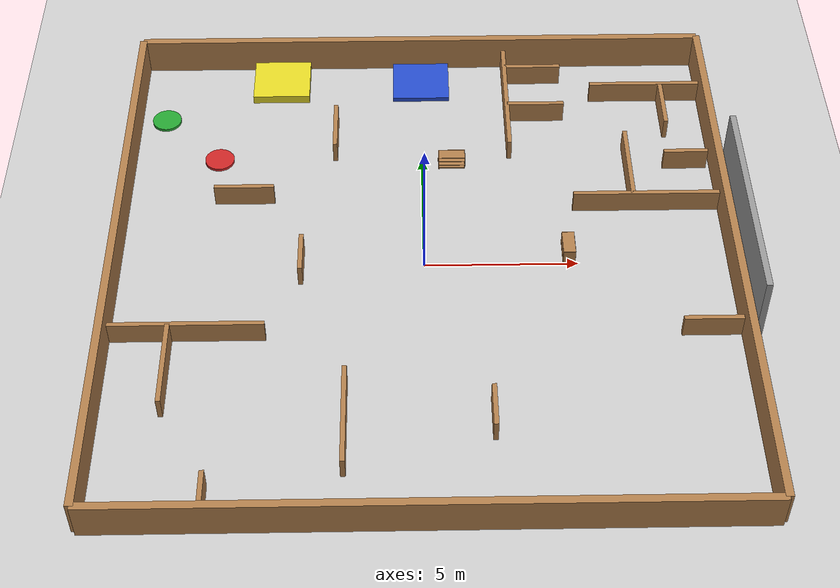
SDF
<sdf version="1.7">
 <world name="default">
  <model name="ground_plane">
   <static>1</static>
   <link name="link">
    <collision name="collision">
     <geometry><plane><normal>0 0 1</normal><size>100 100</size></plane></geometry>
     <surface>
      <contact><collide_bitmask>65535</collide_bitmask></contact>
      <friction><ode><mu>100</mu><mu2>50</mu2></ode></friction>
     </surface>
    </collision>
    <visual name="visual">
     <cast_shadows>0</cast_shadows>
     <geometry><plane><normal>0 0 1</normal><size>100 100</size></plane></geometry>
     <material>
      <script><uri>file://media/materials/scripts/gazebo.material</uri><name>Gazebo/Grey</name></script>
     </material>
    </visual>
   </link>
  </model>
  <model name="room_square">
   <link name="Wall_1">
    <collision name="Wall_1_Collision">
     <geometry><box><size>20 0.25 2</size></box></geometry>
     <pose>0 0 0.25 0 -0 0</pose>
    </collision>
    <visual name="Wall_1_Visual">
     <pose>0 0 0.25 0 -0 0</pose>
     <geometry><box><size>20 0.25 2</size></box></geometry>
     <material>
      <script><uri>file://media/materials/scripts/gazebo.material</uri><name>Gazebo/Wood</name></script>
      <ambient>1 1 1 1</ambient>
     </material>
    </visual>
    <pose>-10 0 0 0 -0 1.5708</pose>
   </link>
   <link name="Wall_2">
    <collision name="Wall_2_Collision">
     <geometry><box><size>20 0.25 2</size></box></geometry>
     <pose>0 0 0.25 0 -0 0</pose>
    </collision>
    <visual name="Wall_2_Visual">
     <pose>0 0 0.25 0 -0 0</pose>
     <geometry><box><size>20 0.25 2</size></box></geometry>
     <material>
      <script><uri>file://media/materials/scripts/gazebo.material</uri><name>Gazebo/Wood</name></script>
      <ambient>1 1 1 1</ambient>
     </material>
    </visual>
    <pose>0 10 0 0 -0 0</pose>
   </link>
   <link name="Wall_3">
    <collision name="Wall_3_Collision">
     <geometry><box><size>20 0.25 2</size></box></geometry>
     <pose>0 0 0.25 0 -0 0</pose>
    </collision>
    <visual name="Wall_3_Visual">
     <pose>0 0 0.25 0 -0 0</pose>
     <geometry><box><size>20 0.25 2</size></box></geometry>
     <material>
      <script><uri>file://media/materials/scripts/gazebo.material</uri><name>Gazebo/Wood</name></script>
      <ambient>1 1 1 1</ambient>
     </material>
    </visual>
    <pose>10 0 0 0 0 -1.5708</pose>
   </link>
   <link name="Wall_4">
    <collision name="Wall_4_Collision">
     <geometry><box><size>20 0.25 2</size></box></geometry>
     <pose>0 0 0.25 0 -0 0</pose>
    </collision>
    <visual name="Wall_4_Visual">
     <pose>0 0 0.25 0 -0 0</pose>
     <geometry><box><size>20 0.25 2</size></box></geometry>
     <material>
      <script><uri>file://media/materials/scripts/gazebo.material</uri><name>Gazebo/Wood</name></script>
      <ambient>1 1 1 1</ambient>
     </material>
    </visual>
    <pose>0 -10 0 0 -0 3.14159</pose>
   </link>
   <static>1</static>
  </model>
  <model name="inner_walls">
   <link name="inner_wall_1_1">
    <collision name="inner_wall_1_1_collision">
     <geometry><box><size>5 0.15 1</size></box></geometry>
     <pose>0 0 0.25 0 -0 0</pose>
    </collision>
    <visual name="inner_wall_1_1_visual">
     <pose>0 0 0.25 0 -0 0</pose>
     <geometry><box><size>5 0.15 1</size></box></geometry>
     <material>
      <script><uri>file://media/materials/scripts/gazebo.material</uri><name>Gazebo/Wood</name></script>
      <ambient>1 1 1 1</ambient>
     </material>
    </visual>
    <pose>-7.5 -3 0 0 -0 0</pose>
   </link>
   <link name="inner_wall_right_down_h">
    <collision name="inner_wall_right_down_h_collision">
     <geometry><box><size>3 0.15 1</size></box></geometry>
     <pose>0 0 0.25 0 -0 0</pose>
    </collision>
    <visual name="inner_wall_right_down_h_visual">
     <pose>0 0 0.25 0 -0 0</pose>
     <geometry><box><size>3 0.15 1</size></box></geometry>
     <material>
      <script><uri>file://media/materials/scripts/gazebo.material</uri><name>Gazebo/Wood</name></script>
      <ambient>1 1 1 1</ambient>
     </material>
    </visual>
    <pose>-8 -4.5 0 0 0 -1.5708</pose>
   </link>
   <link name="inner_wall_1_2">
    <collision name="inner_wall_1_2_collision">
     <geometry><box><size>3 0.15 1</size></box></geometry>
     <pose>0 0 0.25 0 -0 0</pose>
    </collision>
    <visual name="inner_wall_1_2_visual">
     <pose>0 0 0.25 0 -0 0</pose>
     <geometry><box><size>3.5 0.15 1</size></box></geometry>
     <material>
      <script><uri>file://media/materials/scripts/gazebo.material</uri><name>Gazebo/Wood</name></script>
      <ambient>1 1 1 1</ambient>
     </material>
    </visual>
    <pose>-2.5 -6.5 0 0 0 -1.5708</pose>
   </link>
   <link name="inner_wall_3">
    <collision name="inner_wall_3_collision">
     <geometry><box><size>1.5 0.15 1</size></box></geometry>
     <pose>0 0 0.25 0 -0 0</pose>
    </collision>
    <visual name="inner_wall_3_visual">
     <pose>0 0 0.25 0 -0 0</pose>
     <geometry><box><size>1.5 0.15 1</size></box></geometry>
     <material>
      <script><uri>file://media/materials/scripts/gazebo.material</uri><name>Gazebo/Wood</name></script>
      <ambient>1 1 1 1</ambient>
     </material>
    </visual>
    <pose>2 -6.25 0 0 0 -1.5708</pose>
   </link>
   <link name="inner_wall_9">
    <collision name="inner_wall_9_collision">
     <geometry><box><size>2 0.15 1</size></box></geometry>
     <pose>0 0 0.25 0 -0 0</pose>
    </collision>
    <visual name="inner_wall_9_visual">
     <pose>0 0 0.25 0 -0 0</pose>
     <geometry><box><size>2 0.15 1</size></box></geometry>
     <material>
      <script><uri>file://media/materials/scripts/gazebo.material</uri><name>Gazebo/Wood</name></script>
      <ambient>1 1 1 1</ambient>
     </material>
    </visual>
    <pose>9 -3 0 0 -0 0</pose>
   </link>
   <link name="inner_wall_4">
    <collision name="inner_wall_4_collision">
     <geometry><box><size>5 0.15 1</size></box></geometry>
     <pose>0 0 0.25 0 -0 0</pose>
    </collision>
    <visual name="inner_wall_4_visual">
     <pose>0 0 0.25 0 -0 0</pose>
     <geometry><box><size>5 0.15 1</size></box></geometry>
     <material>
      <script><uri>file://media/materials/scripts/gazebo.material</uri><name>Gazebo/Wood</name></script>
      <ambient>1 1 1 1</ambient>
     </material>
    </visual>
    <pose>3 7.5 0 0 0 -1.5708</pose>
   </link>
   <link name="inner_wall_5">
    <collision name="inner_wall_5_collision">
     <geometry><box><size>5 0.15 1</size></box></geometry>
     <pose>0 0 0.25 0 -0 0</pose>
    </collision>
    <visual name="inner_wall_5_visual">
     <pose>0 0 0.25 0 -0 0</pose>
     <geometry><box><size>5 0.15 1</size></box></geometry>
     <material>
      <script><uri>file://media/materials/scripts/gazebo.material</uri><name>Gazebo/Wood</name></script>
      <ambient>1 1 1 1</ambient>
     </material>
    </visual>
    <pose>7.5 2.5 0 0 -0 0</pose>
   </link>
   <link name="inner_wall_10">
    <collision name="inner_wall_10_collision">
     <geometry><box><size>1.5 0.15 1</size></box></geometry>
     <pose>0 0 0.25 0 -0 0</pose>
    </collision>
    <visual name="inner_wall_10_visual">
     <pose>0 0 0.25 0 -0 0</pose>
     <geometry><box><size>1.5 0.15 1</size></box></geometry>
     <material>
      <script><uri>file://media/materials/scripts/gazebo.material</uri><name>Gazebo/Wood</name></script>
      <ambient>1 1 1 1</ambient>
     </material>
    </visual>
    <pose>-6.5 -9.25 0 0 0 -1.5708</pose>
   </link>
   <link name="inner_wall_6">
    <collision name="inner_wall_6_collision">
     <geometry><box><size>1 0.15 1</size></box></geometry>
     <pose>0 0 0.25 0 -0 0</pose>
    </collision>
    <visual name="inner_wall_6_visual">
     <pose>0 0 0.25 0 -0 0</pose>
     <geometry><box><size>2 0.15 1</size></box></geometry>
     <material>
      <script><uri>file://media/materials/scripts/gazebo.material</uri><name>Gazebo/Wood</name></script>
      <ambient>1 1 1 1</ambient>
     </material>
    </visual>
    <pose>-6 3 0 0 -0 0</pose>
   </link>
   <link name="inner_wall_7">
    <collision name="inner_wall_7_collision">
     <geometry><box><size>2 0.15 1</size></box></geometry>
     <pose>0 0 0.25 0 -0 0</pose>
    </collision>
    <visual name="inner_wall_7_visual">
     <pose>0 0 0.25 0 -0 0</pose>
     <geometry><box><size>2 0.15 1</size></box></geometry>
     <material>
      <script><uri>file://media/materials/scripts/gazebo.material</uri><name>Gazebo/Wood</name></script>
      <ambient>1 1 1 1</ambient>
     </material>
    </visual>
    <pose>-3 6 0 0 0 -1.5708</pose>
   </link>
   <link name="inner_wall_8">
    <collision name="inner_wall_8_collision">
     <geometry><box><size>1.5 0.15 1</size></box></geometry>
     <pose>0 0 0.25 0 -0 0</pose>
    </collision>
    <visual name="inner_wall_8_visual">
     <pose>0 0 0.25 0 -0 0</pose>
     <geometry><box><size>1.5 0.15 1</size></box></geometry>
     <material>
      <script><uri>file://media/materials/scripts/gazebo.material</uri><name>Gazebo/Wood</name></script>
      <ambient>1 1 1 1</ambient>
     </material>
    </visual>
    <pose>-4 0 0 0 0 -1.5708</pose>
   </link>
   <link name="inner_wall_11">
    <collision name="inner_wall_11_collision">
     <geometry><box><size>3 0.15 1</size></box></geometry>
     <pose>0 0 0.25 0 -0 0</pose>
    </collision>
    <visual name="inner_wall_11_visual">
     <pose>0 0 0.25 0 -0 0</pose>
     <geometry><box><size>3 0.15 1</size></box></geometry>
     <material>
      <script><uri>file://media/materials/scripts/gazebo.material</uri><name>Gazebo/Wood</name></script>
      <ambient>1 1 1 1</ambient>
     </material>
    </visual>
    <pose>7 4 0 0 0 -1.5708</pose>
   </link>
   <link name="inner_wall_12">
    <collision name="inner_wall_12_collision">
     <geometry><box><size>4 0.15 1</size></box></geometry>
     <pose>0 0 0.25 0 -0 0</pose>
    </collision>
    <visual name="inner_wall_12_visual">
     <pose>0 0 0.25 0 -0 0</pose>
     <geometry><box><size>4 0.15 1</size></box></geometry>
     <material>
      <script><uri>file://media/materials/scripts/gazebo.material</uri><name>Gazebo/Wood</name></script>
      <ambient>1 1 1 1</ambient>
     </material>
    </visual>
    <pose>8 8 0 0 -0 0</pose>
   </link>
   <link name="inner_wall_13">
    <collision name="inner_wall_13_collision">
     <geometry><box><size>2 0.15 1</size></box></geometry>
     <pose>0 0 0.25 0 -0 0</pose>
    </collision>
    <visual name="inner_wall_13_visual">
     <pose>0 0 0.25 0 -0 0</pose>
     <geometry><box><size>2 0.15 1</size></box></geometry>
     <material>
      <script><uri>file://media/materials/scripts/gazebo.material</uri><name>Gazebo/Wood</name></script>
      <ambient>1 1 1 1</ambient>
     </material>
    </visual>
    <pose>4 9 0 0 -0 0</pose>
   </link>
   <link name="inner_wall_14">
    <collision name="inner_wall_14_collision">
     <geometry><box><size>1.5 0.15 1</size></box></geometry>
     <pose>0 0 0.25 0 -0 0</pose>
    </collision>
    <visual name="inner_wall_14_visual">
     <pose>0 0 0.25 0 -0 0</pose>
     <geometry><box><size>1.5 0.15 1</size></box></geometry>
     <material>
      <script><uri>file://media/materials/scripts/gazebo.material</uri><name>Gazebo/Wood</name></script>
      <ambient>1 1 1 1</ambient>
     </material>
    </visual>
    <pose>9 4.5 0 0 -0 0</pose>
   </link>
   <link name="inner_wall_15">
    <collision name="inner_wall_15_collision">
     <geometry><box><size>2 0.15 1</size></box></geometry>
     <pose>0 0 0.25 0 -0 0</pose>
    </collision>
    <visual name="inner_wall_15_visual">
     <pose>0 0 0.25 0 -0 0</pose>
     <geometry><box><size>2 0.15 1</size></box></geometry>
     <material>
      <script><uri>file://media/materials/scripts/gazebo.material</uri><name>Gazebo/Wood</name></script>
      <ambient>1 1 1 1</ambient>
     </material>
    </visual>
    <pose>8.5 7 0 0 0 -1.5708</pose>
   </link>
   <link name="inner_wall_16">
    <collision name="inner_wall_16_collision">
     <geometry><box><size>2 0.15 1</size></box></geometry>
     <pose>0 0 0.25 0 -0 0</pose>
    </collision>
    <visual name="inner_wall_16_visual">
     <pose>0 0 0.25 0 -0 0</pose>
     <geometry><box><size>2 0.15 1</size></box></geometry>
     <material>
      <script><uri>file://media/materials/scripts/gazebo.material</uri><name>Gazebo/Wood</name></script>
      <ambient>1 1 1 1</ambient>
     </material>
    </visual>
    <pose>4 7 0 0 -0 0</pose>
   </link>
   <static>1</static>
  </model>
  <model name="random_obstacles">
   <link name="rnd_obstacle_1">
    <collision name="rnd_obstacle_1_collision">
     <pose>0 0 0.05 0 -0 0</pose>
     <geometry><cylinder><radius>0.5</radius><length>0.1</length></cylinder></geometry>
    </collision>
    <visual name="rnd_obstacle_1_visual">
     <pose>0 0 0.05 0 -0 0</pose>
     <geometry><cylinder><radius>0.5</radius><length>0.1</length></cylinder></geometry>
     <material>
      <script><uri>file://media/materials/scripts/gazebo.material</uri><name>Gazebo/RedBright</name></script>
     </material>
    </visual>
    <pose>-7 5 0 0 -0 0</pose>
   </link>
   <link name="rnd_obstacle_2">
    <collision name="rnd_obstacle_2_collision">
     <pose>0 0 0.09 0 -0 0</pose>
     <geometry><cylinder><radius>0.4</radius><length>0.18</length></cylinder></geometry>
    </collision>
    <visual name="rnd_obstacle_2_visual">
     <pose>0 0 0.09 0 -0 0</pose>
     <geometry><cylinder><radius>0.5</radius><length>0.1</length></cylinder></geometry>
     <material>
      <script><uri>file://media/materials/scripts/gazebo.material</uri><name>Gazebo/Green</name></script>
     </material>
    </visual>
    <pose>-9 7 0 0 -0 0</pose>
   </link>
   <link name="rnd_obstacle_3">
    <collision name="rnd_obstacle_3_collision">
     <geometry><box><size>2 2 0.3</size></box></geometry>
     <pose>0 0 0.15 0 -0 0</pose>
    </collision>
    <visual name="rnd_obstacle_3_visual">
     <pose>0 0 0.15 0 -0 0</pose>
     <geometry><box><size>2 2 0.3</size></box></geometry>
     <material>
      <script><uri>file://media/materials/scripts/gazebo.material</uri><name>Gazebo/Yellow</name></script>
      <ambient>1 1 1 1</ambient>
     </material>
    </visual>
    <pose>-5 9 0 0 -0 0</pose>
   </link>
   <link name="rnd_obstacle_4">
    <collision name="rnd_obstacle_4_collision">
     <geometry><box><size>2 2 0.16</size></box></geometry>
     <pose>0 0 0.08 0 -0 0</pose>
    </collision>
    <visual name="rnd_obstacle_4_visual">
     <pose>0 0 0.08 0 -0 0</pose>
     <geometry><box><size>2 2 0.16</size></box></geometry>
     <material>
      <script><uri>file://media/materials/scripts/gazebo.material</uri><name>Gazebo/Blue</name></script>
      <ambient>1 1 1 1</ambient>
     </material>
    </visual>
    <pose>0 9 0 0 -0 0</pose>
   </link>
   <static>1</static>
  </model>
  <model name="bookshelf_1">
   <static>1</static>
   <link name="link_book">
    <inertial><mass>1</mass></inertial>
    <collision name="back">
     <pose>0 0.005 0.25 0 -0 0</pose>
     <geometry><box><size>0.9 0.01 0.5</size></box></geometry>
    </collision>
    <visual name="visual1">
     <pose>0 0.005 0.25 0 -0 0</pose>
     <geometry><box><size>0.9 0.01 0.5</size></box></geometry>
     <material>
      <script><uri>file://media/materials/scripts/gazebo.material</uri><name>Gazebo/Wood</name></script>
     </material>
    </visual>
    <collision name="left_side">
     <pose>0.45 -0.195 0.25 0 -0 0</pose>
     <geometry><box><size>0.02 0.4 0.5</size></box></geometry>
    </collision>
    <visual name="visual2">
     <pose>0.45 -0.195 0.25 0 -0 0</pose>
     <geometry><box><size>0.02 0.4 0.5</size></box></geometry>
     <material>
      <script><uri>file://media/materials/scripts/gazebo.material</uri><name>Gazebo/Wood</name></script>
     </material>
    </visual>
    <collision name="right_side">
     <pose>-0.45 -0.195 0.25 0 -0 0</pose>
     <geometry><box><size>0.02 0.4 0.5</size></box></geometry>
    </collision>
    <visual name="visual3">
     <pose>-0.45 -0.195 0.25 0 -0 0</pose>
     <geometry><box><size>0.02 0.4 0.5</size></box></geometry>
     <material>
      <script><uri>file://media/materials/scripts/gazebo.material</uri><name>Gazebo/Wood</name></script>
     </material>
    </visual>
    <collision name="bottom">
     <pose>0 -0.195 0.03 0 -0 0</pose>
     <geometry><box><size>0.88 0.4 0.06</size></box></geometry>
    </collision>
    <visual name="visual4">
     <pose>0 -0.195 0.03 0 -0 0</pose>
     <geometry><box><size>0.88 0.4 0.06</size></box></geometry>
     <material>
      <script><uri>file://media/materials/scripts/gazebo.material</uri><name>Gazebo/Wood</name></script>
     </material>
    </visual>
    <collision name="top">
     <pose>0 -0.195 0.49 0 -0 0</pose>
     <geometry><box><size>0.88 0.4 0.02</size></box></geometry>
    </collision>
    <visual name="visual5">
     <pose>0 -0.195 0.49 0 -0 0</pose>
     <geometry><box><size>0.88 0.4 0.02</size></box></geometry>
     <material>
      <script><uri>file://media/materials/scripts/gazebo.material</uri><name>Gazebo/Wood</name></script>
     </material>
    </visual>
    <collision name="low_shelf">
     <pose>0 -0.195 0.167 0 -0 0</pose>
     <geometry><box><size>0.88 0.4 0.02</size></box></geometry>
    </collision>
    <visual name="visual6">
     <pose>0 -0.195 0.167 0 -0 0</pose>
     <geometry><box><size>0.88 0.4 0.02</size></box></geometry>
     <material>
      <script><uri>file://media/materials/scripts/gazebo.material</uri><name>Gazebo/Wood</name></script>
     </material>
    </visual>
    <collision name="high_shelf">
     <pose>0 -0.195 0.333 0 -0 0</pose>
     <geometry><box><size>0.88 0.4 0.02</size></box></geometry>
    </collision>
    <visual name="visual7">
     <pose>0 -0.195 0.333 0 -0 0</pose>
     <geometry><box><size>0.88 0.4 0.02</size></box></geometry>
     <material>
      <script><uri>file://media/materials/scripts/gazebo.material</uri><name>Gazebo/Wood</name></script>
     </material>
    </visual>
   </link>
   <pose>1 4.9 0 0 -0 0</pose>
  </model>
  <model name="bookshelf_2">
   <static>1</static>
   <link name="link_book2">
    <inertial><mass>1</mass></inertial>
    <collision name="back_book2">
     <pose>0 0.005 0.25 0 -0 0</pose>
     <geometry><box><size>0.9 0.01 0.5</size></box></geometry>
    </collision>
    <visual name="visual1_book2">
     <pose>0 0.005 0.25 0 -0 0</pose>
     <geometry><box><size>0.9 0.01 0.5</size></box></geometry>
     <material>
      <script><uri>file://media/materials/scripts/gazebo.material</uri><name>Gazebo/Wood</name></script>
     </material>
    </visual>
    <collision name="left_side_book2">
     <pose>0.45 -0.195 0.25 0 -0 0</pose>
     <geometry><box><size>0.02 0.4 0.5</size></box></geometry>
    </collision>
    <visual name="visual2_book2">
     <pose>0.45 -0.195 0.25 0 -0 0</pose>
     <geometry><box><size>0.02 0.4 0.5</size></box></geometry>
     <material>
      <script><uri>file://media/materials/scripts/gazebo.material</uri><name>Gazebo/Wood</name></script>
     </material>
    </visual>
    <collision name="right_side_book2">
     <pose>-0.45 -0.195 0.25 0 -0 0</pose>
     <geometry><box><size>0.02 0.4 0.5</size></box></geometry>
    </collision>
    <visual name="visual3_book2">
     <pose>-0.45 -0.195 0.25 0 -0 0</pose>
     <geometry><box><size>0.02 0.4 0.5</size></box></geometry>
     <material>
      <script><uri>file://media/materials/scripts/gazebo.material</uri><name>Gazebo/Wood</name></script>
     </material>
    </visual>
    <collision name="bottom_book2">
     <pose>0 -0.195 0.03 0 -0 0</pose>
     <geometry><box><size>0.88 0.4 0.06</size></box></geometry>
    </collision>
    <visual name="visual4_book2">
     <pose>0 -0.195 0.03 0 -0 0</pose>
     <geometry><box><size>0.88 0.4 0.06</size></box></geometry>
     <material>
      <script><uri>file://media/materials/scripts/gazebo.material</uri><name>Gazebo/Wood</name></script>
     </material>
    </visual>
    <collision name="top_book2">
     <pose>0 -0.195 0.49 0 -0 0</pose>
     <geometry><box><size>0.88 0.4 0.02</size></box></geometry>
    </collision>
    <visual name="visual5_book2">
     <pose>0 -0.195 0.49 0 -0 0</pose>
     <geometry><box><size>0.88 0.4 0.02</size></box></geometry>
     <material>
      <script><uri>file://media/materials/scripts/gazebo.material</uri><name>Gazebo/Wood</name></script>
     </material>
    </visual>
    <collision name="low_shelf_book2">
     <pose>0 -0.195 0.167 0 -0 0</pose>
     <geometry><box><size>0.88 0.4 0.02</size></box></geometry>
    </collision>
    <visual name="visual6_book2">
     <pose>0 -0.195 0.167 0 -0 0</pose>
     <geometry><box><size>0.88 0.4 0.02</size></box></geometry>
     <material>
      <script><uri>file://media/materials/scripts/gazebo.material</uri><name>Gazebo/Wood</name></script>
     </material>
    </visual>
    <collision name="high_shelf_book2">
     <pose>0 -0.195 0.334 0 -0 0</pose>
     <geometry><box><size>0.88 0.4 0.02</size></box></geometry>
    </collision>
    <visual name="visual7_book2">
     <pose>0 -0.195 0.334 0 -0 0</pose>
     <geometry><box><size>0.88 0.4 0.02</size></box></geometry>
     <material>
      <script><uri>file://media/materials/scripts/gazebo.material</uri><name>Gazebo/Wood</name></script>
     </material>
    </visual>
   </link>
   <pose>4.9 0.5 0 0 0 -1.5708</pose>
  </model>
  <model name="grey_wall_clone_1">
   <static>1</static>
   <link name="link">
    <pose>0 0 1.4 0 -0 0</pose>
    <collision name="collision"><geometry><box><size>7.5 0.2 2.8</size></box></geometry></collision>
    <visual name="visual">
     <cast_shadows>0</cast_shadows>
     <geometry><box><size>7.5 0.2 2.8</size></box></geometry>
     <material>
      <script>
       <uri>model://grey_wall/materials/scripts</uri>
       <uri>model://grey_wall/materials/textures</uri>
       <name>vrc/grey_wall</name>
      </script>
     </material>
    </visual>
   </link>
   <pose>10.2419 0.206026 0 0 -0 1.5721</pose>
  </model>
 </world>
</sdf>
